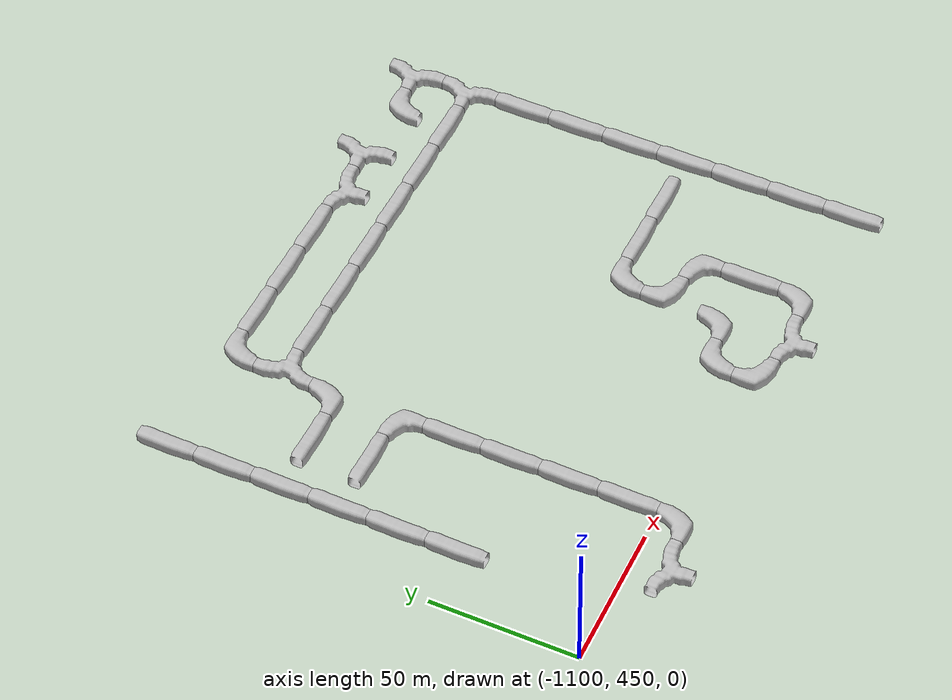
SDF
<sdf version="1.6">
 <world name="cave_16000_2">
  <include>
   <static>true</static>
   <name>cave_-45_22</name>
   <pose>-900 440 0 0 0 0.0</pose>
   <uri>model://cave_straight_20m</uri>
  </include>
  <include>
   <static>true</static>
   <name>cave_-45_23</name>
   <pose>-900 460 0 0 0 0.0</pose>
   <uri>model://cave_straight_20m</uri>
  </include>
  <include>
   <static>true</static>
   <name>cave_-45_24</name>
   <pose>-900 480 0 0 0 0.0</pose>
   <uri>model://cave_straight_20m</uri>
  </include>
  <include>
   <static>true</static>
   <name>cave_-45_25</name>
   <pose>-900 500 0 0 0 0.0</pose>
   <uri>model://cave_straight_20m</uri>
  </include>
  <include>
   <static>true</static>
   <name>cave_-45_26</name>
   <pose>-900 520 0 0 0 0.0</pose>
   <uri>model://cave_straight_20m</uri>
  </include>
  <include>
   <static>true</static>
   <name>cave_-45_27</name>
   <pose>-900 540 0 0 0 0.0</pose>
   <uri>model://cave_straight_20m</uri>
  </include>
  <include>
   <static>true</static>
   <name>cave_-45_28</name>
   <pose>-900 560 0 0 0 0.0</pose>
   <uri>model://cave_straight_20m</uri>
  </include>
  <include>
   <static>true</static>
   <name>cave_-45_29</name>
   <pose>-900 580 0 0 0 1.5707963267948966</pose>
   <uri>model://cave_3way_20m</uri>
  </include>
  <include>
   <static>true</static>
   <name>cave_-46_29</name>
   <pose>-920 580 0 0 0 1.5707963267948966</pose>
   <uri>model://cave_straight_20m</uri>
  </include>
  <include>
   <static>true</static>
   <name>cave_-47_29</name>
   <pose>-940 580 0 0 0 1.5707963267948966</pose>
   <uri>model://cave_straight_20m</uri>
  </include>
  <include>
   <static>true</static>
   <name>cave_-48_29</name>
   <pose>-960 580 0 0 0 1.5707963267948966</pose>
   <uri>model://cave_straight_20m</uri>
  </include>
  <include>
   <static>true</static>
   <name>cave_-49_29</name>
   <pose>-980 580 0 0 0 1.5707963267948966</pose>
   <uri>model://cave_straight_20m</uri>
  </include>
  <include>
   <static>true</static>
   <name>cave_-50_29</name>
   <pose>-1000 580 0 0 0 1.5707963267948966</pose>
   <uri>model://cave_straight_20m</uri>
  </include>
  <include>
   <static>true</static>
   <name>cave_-51_29</name>
   <pose>-1020 580 0 0 0 1.5707963267948966</pose>
   <uri>model://cave_straight_20m</uri>
  </include>
  <include>
   <static>true</static>
   <name>cave_-52_29</name>
   <pose>-1040 580 0 0 0 -1.5707963267948966</pose>
   <uri>model://cave_3way_20m</uri>
  </include>
  <include>
   <static>true</static>
   <name>cave_-52_28</name>
   <pose>-1040 560 0 0 0 1.5707963267948966</pose>
   <uri>model://cave_L_20m</uri>
  </include>
  <include>
   <static>true</static>
   <name>cave_-53_28</name>
   <pose>-1060 560 0 0 0 1.5707963267948966</pose>
   <uri>model://cave_straight_20m</uri>
  </include>
  <include>
   <static>true</static>
   <name>cave_-52_30</name>
   <pose>-1040 600 0 0 0 -1.5707963267948966</pose>
   <uri>model://cave_L_20m</uri>
  </include>
  <include>
   <static>true</static>
   <name>cave_-51_30</name>
   <pose>-1020 600 0 0 0 1.5707963267948966</pose>
   <uri>model://cave_straight_20m</uri>
  </include>
  <include>
   <static>true</static>
   <name>cave_-50_30</name>
   <pose>-1000 600 0 0 0 1.5707963267948966</pose>
   <uri>model://cave_straight_20m</uri>
  </include>
  <include>
   <static>true</static>
   <name>cave_-49_30</name>
   <pose>-980 600 0 0 0 1.5707963267948966</pose>
   <uri>model://cave_straight_20m</uri>
  </include>
  <include>
   <static>true</static>
   <name>cave_-48_30</name>
   <pose>-960 600 0 0 0 3.141592653589793</pose>
   <uri>model://cave_3way_20m</uri>
  </include>
  <include>
   <static>true</static>
   <name>cave_-47_30</name>
   <pose>-940 600 0 0 0 1.5707963267948966</pose>
   <uri>model://cave_3way_20m</uri>
  </include>
  <include>
   <static>true</static>
   <name>cave_-45_30</name>
   <pose>-900 600 0 0 0 1.5707963267948966</pose>
   <uri>model://cave_3way_20m</uri>
  </include>
  <include>
   <static>true</static>
   <name>cave_-46_30</name>
   <pose>-920 600 0 0 0 -1.5707963267948966</pose>
   <uri>model://cave_L_20m</uri>
  </include>
  <include>
   <static>true</static>
   <name>cave_-48_22</name>
   <pose>-960 440 0 0 0 3.141592653589793</pose>
   <uri>model://cave_3way_20m</uri>
  </include>
  <include>
   <static>true</static>
   <name>cave_-47_22</name>
   <pose>-940 440 0 0 0 1.5707963267948966</pose>
   <uri>model://cave_L_20m</uri>
  </include>
  <include>
   <static>true</static>
   <name>cave_-47_23</name>
   <pose>-940 460 0 0 0 0.0</pose>
   <uri>model://cave_straight_20m</uri>
  </include>
  <include>
   <static>true</static>
   <name>cave_-47_24</name>
   <pose>-940 480 0 0 0 3.141592653589793</pose>
   <uri>model://cave_L_20m</uri>
  </include>
  <include>
   <static>true</static>
   <name>cave_-48_24</name>
   <pose>-960 480 0 0 0 0.0</pose>
   <uri>model://cave_L_20m</uri>
  </include>
  <include>
   <static>true</static>
   <name>cave_-48_25</name>
   <pose>-960 500 0 0 0 -1.5707963267948966</pose>
   <uri>model://cave_L_20m</uri>
  </include>
  <include>
   <static>true</static>
   <name>cave_-47_25</name>
   <pose>-940 500 0 0 0 1.5707963267948966</pose>
   <uri>model://cave_straight_20m</uri>
  </include>
  <include>
   <static>true</static>
   <name>cave_-46_25</name>
   <pose>-920 500 0 0 0 1.5707963267948966</pose>
   <uri>model://cave_straight_20m</uri>
  </include>
  <include>
   <static>true</static>
   <name>cave_-49_22</name>
   <pose>-980 440 0 0 0 0.0</pose>
   <uri>model://cave_L_20m</uri>
  </include>
  <include>
   <static>true</static>
   <name>cave_-49_23</name>
   <pose>-980 460 0 0 0 -1.5707963267948966</pose>
   <uri>model://cave_L_20m</uri>
  </include>
  <include>
   <static>true</static>
   <name>cave_-48_23</name>
   <pose>-960 460 0 0 0 1.5707963267948966</pose>
   <uri>model://cave_L_20m</uri>
  </include>
  <include>
   <static>true</static>
   <name>cave_-53_22</name>
   <pose>-1060 440 0 0 0 3.141592653589793</pose>
   <uri>model://cave_3way_20m</uri>
  </include>
  <include>
   <static>true</static>
   <name>cave_-52_22</name>
   <pose>-1040 440 0 0 0 1.5707963267948966</pose>
   <uri>model://cave_L_20m</uri>
  </include>
  <include>
   <static>true</static>
   <name>cave_-52_23</name>
   <pose>-1040 460 0 0 0 0.0</pose>
   <uri>model://cave_straight_20m</uri>
  </include>
  <include>
   <static>true</static>
   <name>cave_-52_24</name>
   <pose>-1040 480 0 0 0 0.0</pose>
   <uri>model://cave_straight_20m</uri>
  </include>
  <include>
   <static>true</static>
   <name>cave_-52_25</name>
   <pose>-1040 500 0 0 0 0.0</pose>
   <uri>model://cave_straight_20m</uri>
  </include>
  <include>
   <static>true</static>
   <name>cave_-52_26</name>
   <pose>-1040 520 0 0 0 0.0</pose>
   <uri>model://cave_straight_20m</uri>
  </include>
  <include>
   <static>true</static>
   <name>cave_-52_27</name>
   <pose>-1040 540 0 0 0 3.141592653589793</pose>
   <uri>model://cave_L_20m</uri>
  </include>
  <include>
   <static>true</static>
   <name>cave_-53_27</name>
   <pose>-1060 540 0 0 0 1.5707963267948966</pose>
   <uri>model://cave_straight_20m</uri>
  </include>
  <include>
   <static>true</static>
   <name>cave_-54_25</name>
   <pose>-1080 500 0 0 0 0.0</pose>
   <uri>model://cave_straight_20m</uri>
  </include>
  <include>
   <static>true</static>
   <name>cave_-54_26</name>
   <pose>-1080 520 0 0 0 0.0</pose>
   <uri>model://cave_straight_20m</uri>
  </include>
  <include>
   <static>true</static>
   <name>cave_-54_27</name>
   <pose>-1080 540 0 0 0 0.0</pose>
   <uri>model://cave_straight_20m</uri>
  </include>
  <include>
   <static>true</static>
   <name>cave_-54_28</name>
   <pose>-1080 560 0 0 0 0.0</pose>
   <uri>model://cave_straight_20m</uri>
  </include>
  <include>
   <static>true</static>
   <name>cave_-54_29</name>
   <pose>-1080 580 0 0 0 0.0</pose>
   <uri>model://cave_straight_20m</uri>
  </include>
  <include>
   <static>true</static>
   <name>cave_-54_30</name>
   <pose>-1080 600 0 0 0 0.0</pose>
   <uri>model://cave_straight_20m</uri>
  </include>
 </world>
</sdf>
